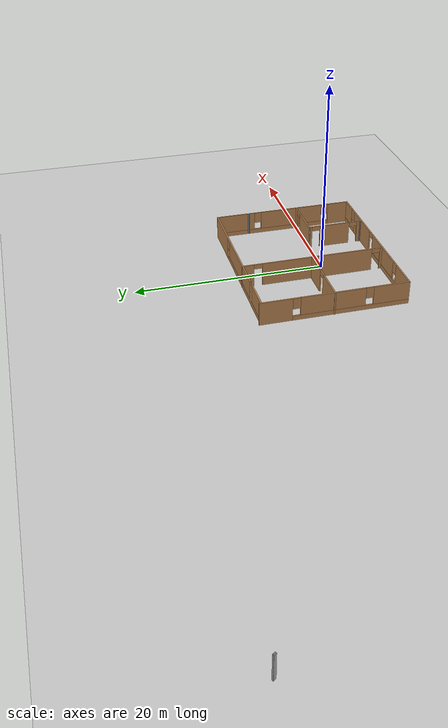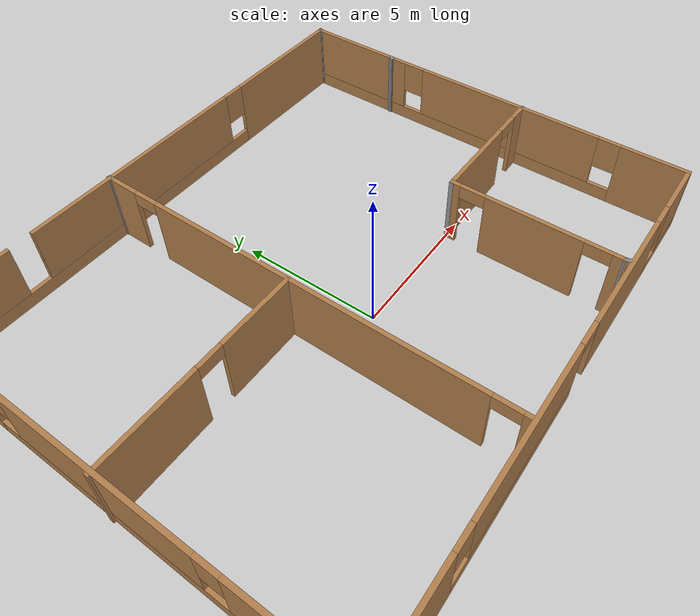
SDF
<sdf version="1.7">
 <world name="default">
  <light name="sun" type="directional">
   <pose>0 0 10 0 -0 0</pose>
   <diffuse>0.8 0.8 0.8 1</diffuse>
   <specular>0.2 0.2 0.2 1</specular>
   <attenuation>
    <range>1000</range>
    <constant>0.9</constant>
    <linear>0.01</linear>
    <quadratic>0.001</quadratic>
   </attenuation>
   <direction>-0.5 0.1 -0.9</direction>
   <spot><inner_angle>0</inner_angle><outer_angle>0</outer_angle><falloff>0</falloff></spot>
  </light>
  <model name="ground_plane">
   <static>1</static>
   <link name="link">
    <collision name="collision">
     <geometry><plane><normal>0 0 1</normal><size>100 100</size></plane></geometry>
     <surface><friction><ode><mu>100</mu><mu2>50</mu2></ode></friction></surface>
    </collision>
    <visual name="visual">
     <cast_shadows>0</cast_shadows>
     <geometry><plane><normal>0 0 1</normal><size>100 100</size></plane></geometry>
     <material>
      <script><uri>file://media/materials/scripts/gazebo.material</uri><name>Gazebo/Grey</name></script>
     </material>
    </visual>
   </link>
  </model>
  <gravity>0 0 -9.8</gravity>
  <magnetic_field>6e-06 2.3e-05 -4.2e-05</magnetic_field>
  <atmosphere type="adiabatic"/>
  <physics type="ode">
   <max_step_size>0.001</max_step_size>
   <real_time_factor>1</real_time_factor>
   <real_time_update_rate>1000</real_time_update_rate>
  </physics>
  <scene><ambient>0.4 0.4 0.4 1</ambient><background>0.7 0.7 0.7 1</background><shadows>1</shadows></scene>
  <spherical_coordinates>
   <surface_model>EARTH_WGS84</surface_model>
   <latitude_deg>0</latitude_deg>
   <longitude_deg>0</longitude_deg>
   <elevation>0</elevation>
   <heading_deg>0</heading_deg>
  </spherical_coordinates>
  <model name="gded">
   <pose>-18.3364 6.25028 0 0 -0 0</pose>
   <link name="Wall_12">
    <collision name="Wall_12_Collision">
     <geometry><box><size>0.25 0.15 2.5</size></box></geometry>
     <pose>0 0 1.25 0 -0 0</pose>
    </collision>
    <visual name="Wall_12_Visual">
     <pose>0 0 1.25 0 -0 0</pose>
     <geometry><box><size>0.25 0.15 2.5</size></box></geometry>
     <material>
      <script><uri>file://media/materials/scripts/gazebo.material</uri><name>Gazebo/Grey</name></script>
      <ambient>1 1 1 1</ambient>
     </material>
     <meta><layer>0</layer></meta>
    </visual>
    <pose>-27.549 12.2668 0 0 -0 -1.0472</pose>
   </link>
   <link name="Wall_13">
    <collision name="Wall_13_Collision">
     <geometry><box><size>0.25 0.15 2.5</size></box></geometry>
     <pose>0 0 1.25 0 -0 0</pose>
    </collision>
    <visual name="Wall_13_Visual">
     <pose>0 0 1.25 0 -0 0</pose>
     <geometry><box><size>0.25 0.15 2.5</size></box></geometry>
     <material>
      <script><uri>file://media/materials/scripts/gazebo.material</uri><name>Gazebo/Grey</name></script>
      <ambient>1 1 1 1</ambient>
     </material>
     <meta><layer>0</layer></meta>
    </visual>
    <pose>-27.549 12.2668 0 0 -0 2.0944</pose>
   </link>
   <link name="Wall_22">
    <pose>9.4587 -4.66255 0 0 -0 -1.5708</pose>
    <visual name="Wall_22_Visual_0">
     <pose>-6.05793 0 1.25 0 -0 0</pose>
     <geometry><box><size>3.38415 0.15 2.5</size></box></geometry>
     <material>
      <script><uri>file://media/materials/scripts/gazebo.material</uri><name>Gazebo/Wood</name></script>
      <ambient>1 1 1 1</ambient>
     </material>
     <meta><layer>0</layer></meta>
    </visual>
    <collision name="Wall_22_Collision_0">
     <geometry><box><size>3.38415 0.15 2.5</size></box></geometry>
     <pose>-6.05793 0 1.25 0 -0 0</pose>
    </collision>
    <visual name="Wall_22_Visual_1">
     <pose>1.69207 0 0.25 0 -0 0</pose>
     <geometry><box><size>12.1159 0.15 0.5</size></box></geometry>
     <material>
      <script><uri>file://media/materials/scripts/gazebo.material</uri><name>Gazebo/Wood</name></script>
      <ambient>1 1 1 1</ambient>
     </material>
     <meta><layer>0</layer></meta>
    </visual>
    <collision name="Wall_22_Collision_1">
     <geometry><box><size>12.1159 0.15 0.5</size></box></geometry>
     <pose>1.69207 0 0.25 0 -0 0</pose>
    </collision>
    <visual name="Wall_22_Visual_2">
     <pose>-0.208847 0 1.5 0 -0 0</pose>
     <geometry><box><size>6.71401 0.15 2</size></box></geometry>
     <material>
      <script><uri>file://media/materials/scripts/gazebo.material</uri><name>Gazebo/Wood</name></script>
      <ambient>1 1 1 1</ambient>
     </material>
     <meta><layer>0</layer></meta>
    </visual>
    <collision name="Wall_22_Collision_2">
     <geometry><box><size>6.71401 0.15 2</size></box></geometry>
     <pose>-0.208847 0 1.5 0 -0 0</pose>
    </collision>
    <visual name="Wall_22_Visual_3">
     <pose>5.84908 0 1.5 0 -0 0</pose>
     <geometry><box><size>3.80184 0.15 2</size></box></geometry>
     <material>
      <script><uri>file://media/materials/scripts/gazebo.material</uri><name>Gazebo/Wood</name></script>
      <ambient>1 1 1 1</ambient>
     </material>
     <meta><layer>0</layer></meta>
    </visual>
    <collision name="Wall_22_Collision_3">
     <geometry><box><size>3.80184 0.15 2</size></box></geometry>
     <pose>5.84908 0 1.5 0 -0 0</pose>
    </collision>
    <visual name="Wall_22_Visual_4">
     <pose>-3.96585 0 1.9 0 -0 0</pose>
     <geometry><box><size>0.8 0.15 1.2</size></box></geometry>
     <material>
      <script><uri>file://media/materials/scripts/gazebo.material</uri><name>Gazebo/Wood</name></script>
      <ambient>1 1 1 1</ambient>
     </material>
     <meta><layer>0</layer></meta>
    </visual>
    <collision name="Wall_22_Collision_4">
     <geometry><box><size>0.8 0.15 1.2</size></box></geometry>
     <pose>-3.96585 0 1.9 0 -0 0</pose>
    </collision>
    <visual name="Wall_22_Visual_5">
     <pose>3.54816 0 1.9 0 -0 0</pose>
     <geometry><box><size>0.8 0.15 1.2</size></box></geometry>
     <material>
      <script><uri>file://media/materials/scripts/gazebo.material</uri><name>Gazebo/Wood</name></script>
      <ambient>1 1 1 1</ambient>
     </material>
     <meta><layer>0</layer></meta>
    </visual>
    <collision name="Wall_22_Collision_5">
     <geometry><box><size>0.8 0.15 1.2</size></box></geometry>
     <pose>3.54816 0 1.9 0 -0 0</pose>
    </collision>
   </link>
   <link name="Wall_23">
    <pose>18.5087 -12.3375 0 0 -0 0</pose>
    <visual name="Wall_23_Visual_0">
     <pose>-7.46882 0 1.25 0 -0 0</pose>
     <geometry><box><size>3.31236 0.15 2.5</size></box></geometry>
     <material>
      <script><uri>file://media/materials/scripts/gazebo.material</uri><name>Gazebo/Wood</name></script>
      <ambient>1 1 1 1</ambient>
     </material>
     <meta><layer>0</layer></meta>
    </visual>
    <collision name="Wall_23_Collision_0">
     <geometry><box><size>3.31236 0.15 2.5</size></box></geometry>
     <pose>-7.46882 0 1.25 0 -0 0</pose>
    </collision>
    <visual name="Wall_23_Visual_1">
     <pose>3.95701 0 1.25 0 -0 0</pose>
     <geometry><box><size>4.62997 0.15 2.5</size></box></geometry>
     <material>
      <script><uri>file://media/materials/scripts/gazebo.material</uri><name>Gazebo/Wood</name></script>
      <ambient>1 1 1 1</ambient>
     </material>
     <meta><layer>0</layer></meta>
    </visual>
    <collision name="Wall_23_Collision_1">
     <geometry><box><size>4.62997 0.15 2.5</size></box></geometry>
     <pose>3.95701 0 1.25 0 -0 0</pose>
    </collision>
    <visual name="Wall_23_Visual_2">
     <pose>-2.53531 0 0.25 0 -0 0</pose>
     <geometry><box><size>6.55467 0.15 0.5</size></box></geometry>
     <material>
      <script><uri>file://media/materials/scripts/gazebo.material</uri><name>Gazebo/Wood</name></script>
      <ambient>1 1 1 1</ambient>
     </material>
     <meta><layer>0</layer></meta>
    </visual>
    <collision name="Wall_23_Collision_2">
     <geometry><box><size>6.55467 0.15 0.5</size></box></geometry>
     <pose>-2.53531 0 0.25 0 -0 0</pose>
    </collision>
    <visual name="Wall_23_Visual_3">
     <pose>7.6985 0 0.25 0 -0 0</pose>
     <geometry><box><size>2.85301 0.15 0.5</size></box></geometry>
     <material>
      <script><uri>file://media/materials/scripts/gazebo.material</uri><name>Gazebo/Wood</name></script>
      <ambient>1 1 1 1</ambient>
     </material>
     <meta><layer>0</layer></meta>
    </visual>
    <collision name="Wall_23_Collision_3">
     <geometry><box><size>2.85301 0.15 0.5</size></box></geometry>
     <pose>7.6985 0 0.25 0 -0 0</pose>
    </collision>
    <visual name="Wall_23_Visual_4">
     <pose>-2.13531 0 1.5 0 -0 0</pose>
     <geometry><box><size>5.75467 0.15 2</size></box></geometry>
     <material>
      <script><uri>file://media/materials/scripts/gazebo.material</uri><name>Gazebo/Wood</name></script>
      <ambient>1 1 1 1</ambient>
     </material>
     <meta><layer>0</layer></meta>
    </visual>
    <collision name="Wall_23_Collision_4">
     <geometry><box><size>5.75467 0.15 2</size></box></geometry>
     <pose>-2.13531 0 1.5 0 -0 0</pose>
    </collision>
    <visual name="Wall_23_Visual_5">
     <pose>-2.13531 0 1.5 0 -0 0</pose>
     <geometry><box><size>5.75467 0.15 2</size></box></geometry>
     <material>
      <script><uri>file://media/materials/scripts/gazebo.material</uri><name>Gazebo/Wood</name></script>
      <ambient>1 1 1 1</ambient>
     </material>
     <meta><layer>0</layer></meta>
    </visual>
    <collision name="Wall_23_Collision_5">
     <geometry><box><size>5.75467 0.15 2</size></box></geometry>
     <pose>-2.13531 0 1.5 0 -0 0</pose>
    </collision>
    <visual name="Wall_23_Visual_6">
     <pose>8.0985 0 1.5 0 -0 0</pose>
     <geometry><box><size>2.05301 0.15 2</size></box></geometry>
     <material>
      <script><uri>file://media/materials/scripts/gazebo.material</uri><name>Gazebo/Wood</name></script>
      <ambient>1 1 1 1</ambient>
     </material>
     <meta><layer>0</layer></meta>
    </visual>
    <collision name="Wall_23_Collision_6">
     <geometry><box><size>2.05301 0.15 2</size></box></geometry>
     <pose>8.0985 0 1.5 0 -0 0</pose>
    </collision>
    <visual name="Wall_23_Visual_7">
     <pose>-5.41264 0 1.9 0 -0 0</pose>
     <geometry><box><size>0.8 0.15 1.2</size></box></geometry>
     <material>
      <script><uri>file://media/materials/scripts/gazebo.material</uri><name>Gazebo/Wood</name></script>
      <ambient>1 1 1 1</ambient>
     </material>
     <meta><layer>0</layer></meta>
    </visual>
    <collision name="Wall_23_Collision_7">
     <geometry><box><size>0.8 0.15 1.2</size></box></geometry>
     <pose>-5.41264 0 1.9 0 -0 0</pose>
    </collision>
    <visual name="Wall_23_Visual_8">
     <pose>6.67199 0 1.9 0 -0 0</pose>
     <geometry><box><size>0.8 0.15 1.2</size></box></geometry>
     <material>
      <script><uri>file://media/materials/scripts/gazebo.material</uri><name>Gazebo/Wood</name></script>
      <ambient>1 1 1 1</ambient>
     </material>
     <meta><layer>0</layer></meta>
    </visual>
    <collision name="Wall_23_Collision_8">
     <geometry><box><size>0.8 0.15 1.2</size></box></geometry>
     <pose>6.67199 0 1.9 0 -0 0</pose>
    </collision>
    <visual name="Wall_23_Visual_9">
     <pose>1.19203 0 2.25 0 -0 0</pose>
     <geometry><box><size>0.9 0.15 0.5</size></box></geometry>
     <material>
      <script><uri>file://media/materials/scripts/gazebo.material</uri><name>Gazebo/Wood</name></script>
      <ambient>1 1 1 1</ambient>
     </material>
     <meta><layer>0</layer></meta>
    </visual>
    <collision name="Wall_23_Collision_9">
     <geometry><box><size>0.9 0.15 0.5</size></box></geometry>
     <pose>1.19203 0 2.25 0 -0 0</pose>
    </collision>
    <visual name="Wall_23_Visual_10">
     <pose>1.19203 0 2.25 0 -0 0</pose>
     <geometry><box><size>0.9 0.15 0.5</size></box></geometry>
     <material>
      <script><uri>file://media/materials/scripts/gazebo.material</uri><name>Gazebo/Wood</name></script>
      <ambient>1 1 1 1</ambient>
     </material>
     <meta><layer>0</layer></meta>
    </visual>
    <collision name="Wall_23_Collision_10">
     <geometry><box><size>0.9 0.15 0.5</size></box></geometry>
     <pose>1.19203 0 2.25 0 -0 0</pose>
    </collision>
   </link>
   <link name="Wall_24">
    <pose>27.5587 -4.78755 0 0 -0 1.5708</pose>
    <visual name="Wall_24_Visual_0">
     <pose>-6.43001 0 1.25 0 -0 0</pose>
     <geometry><box><size>2.38997 0.15 2.5</size></box></geometry>
     <material>
      <script><uri>file://media/materials/scripts/gazebo.material</uri><name>Gazebo/Wood</name></script>
      <ambient>1 1 1 1</ambient>
     </material>
     <meta><layer>0</layer></meta>
    </visual>
    <collision name="Wall_24_Collision_0">
     <geometry><box><size>2.38997 0.15 2.5</size></box></geometry>
     <pose>-6.43001 0 1.25 0 -0 0</pose>
    </collision>
    <visual name="Wall_24_Visual_1">
     <pose>1.19499 0 0.25 0 -0 0</pose>
     <geometry><box><size>12.86 0.15 0.5</size></box></geometry>
     <material>
      <script><uri>file://media/materials/scripts/gazebo.material</uri><name>Gazebo/Wood</name></script>
      <ambient>1 1 1 1</ambient>
     </material>
     <meta><layer>0</layer></meta>
    </visual>
    <collision name="Wall_24_Collision_1">
     <geometry><box><size>12.86 0.15 0.5</size></box></geometry>
     <pose>1.19499 0 0.25 0 -0 0</pose>
    </collision>
    <visual name="Wall_24_Visual_2">
     <pose>-0.886582 0 1.5 0 -0 0</pose>
     <geometry><box><size>7.09689 0.15 2</size></box></geometry>
     <material>
      <script><uri>file://media/materials/scripts/gazebo.material</uri><name>Gazebo/Wood</name></script>
      <ambient>1 1 1 1</ambient>
     </material>
     <meta><layer>0</layer></meta>
    </visual>
    <collision name="Wall_24_Collision_2">
     <geometry><box><size>7.09689 0.15 2</size></box></geometry>
     <pose>-0.886582 0 1.5 0 -0 0</pose>
    </collision>
    <visual name="Wall_24_Visual_3">
     <pose>5.54343 0 1.5 0 -0 0</pose>
     <geometry><box><size>4.16313 0.15 2</size></box></geometry>
     <material>
      <script><uri>file://media/materials/scripts/gazebo.material</uri><name>Gazebo/Wood</name></script>
      <ambient>1 1 1 1</ambient>
     </material>
     <meta><layer>0</layer></meta>
    </visual>
    <collision name="Wall_24_Collision_3">
     <geometry><box><size>4.16313 0.15 2</size></box></geometry>
     <pose>5.54343 0 1.5 0 -0 0</pose>
    </collision>
    <visual name="Wall_24_Visual_4">
     <pose>-4.83503 0 1.9 0 -0 0</pose>
     <geometry><box><size>0.8 0.15 1.2</size></box></geometry>
     <material>
      <script><uri>file://media/materials/scripts/gazebo.material</uri><name>Gazebo/Wood</name></script>
      <ambient>1 1 1 1</ambient>
     </material>
     <meta><layer>0</layer></meta>
    </visual>
    <collision name="Wall_24_Collision_4">
     <geometry><box><size>0.8 0.15 1.2</size></box></geometry>
     <pose>-4.83503 0 1.9 0 -0 0</pose>
    </collision>
    <visual name="Wall_24_Visual_5">
     <pose>3.06187 0 1.9 0 -0 0</pose>
     <geometry><box><size>0.8 0.15 1.2</size></box></geometry>
     <material>
      <script><uri>file://media/materials/scripts/gazebo.material</uri><name>Gazebo/Wood</name></script>
      <ambient>1 1 1 1</ambient>
     </material>
     <meta><layer>0</layer></meta>
    </visual>
    <collision name="Wall_24_Collision_5">
     <geometry><box><size>0.8 0.15 1.2</size></box></geometry>
     <pose>3.06187 0 1.9 0 -0 0</pose>
    </collision>
   </link>
   <link name="Wall_25">
    <collision name="Wall_25_Collision">
     <geometry><box><size>0.25 0.15 2.5</size></box></geometry>
     <pose>0 0 1.25 0 -0 0</pose>
    </collision>
    <visual name="Wall_25_Visual">
     <pose>0 0 1.25 0 -0 0</pose>
     <geometry><box><size>0.25 0.15 2.5</size></box></geometry>
     <material>
      <script><uri>file://media/materials/scripts/gazebo.material</uri><name>Gazebo/Grey</name></script>
      <ambient>1 1 1 1</ambient>
     </material>
     <meta><layer>0</layer></meta>
    </visual>
    <pose>27.5716 2.81075 0 0 -0 1.309</pose>
   </link>
   <link name="Wall_26">
    <pose>18.5346 2.85905 0 0 -0 3.14159</pose>
    <visual name="Wall_26_Visual_0">
     <pose>-6.64976 0 1.25 0 -0 0</pose>
     <geometry><box><size>4.95048 0.15 2.5</size></box></geometry>
     <material>
      <script><uri>file://media/materials/scripts/gazebo.material</uri><name>Gazebo/Wood</name></script>
      <ambient>1 1 1 1</ambient>
     </material>
     <meta><layer>0</layer></meta>
    </visual>
    <collision name="Wall_26_Collision_0">
     <geometry><box><size>4.95048 0.15 2.5</size></box></geometry>
     <pose>-6.64976 0 1.25 0 -0 0</pose>
    </collision>
    <visual name="Wall_26_Visual_1">
     <pose>2.47524 0 0.25 0 -0 0</pose>
     <geometry><box><size>13.2995 0.15 0.5</size></box></geometry>
     <material>
      <script><uri>file://media/materials/scripts/gazebo.material</uri><name>Gazebo/Wood</name></script>
      <ambient>1 1 1 1</ambient>
     </material>
     <meta><layer>0</layer></meta>
    </visual>
    <collision name="Wall_26_Collision_1">
     <geometry><box><size>13.2995 0.15 0.5</size></box></geometry>
     <pose>2.47524 0 0.25 0 -0 0</pose>
    </collision>
    <visual name="Wall_26_Visual_2">
     <pose>0.84397 0 1.5 0 -0 0</pose>
     <geometry><box><size>8.43697 0.15 2</size></box></geometry>
     <material>
      <script><uri>file://media/materials/scripts/gazebo.material</uri><name>Gazebo/Wood</name></script>
      <ambient>1 1 1 1</ambient>
     </material>
     <meta><layer>0</layer></meta>
    </visual>
    <collision name="Wall_26_Collision_2">
     <geometry><box><size>8.43697 0.15 2</size></box></geometry>
     <pose>0.84397 0 1.5 0 -0 0</pose>
    </collision>
    <visual name="Wall_26_Visual_3">
     <pose>7.49373 0 1.5 0 -0 0</pose>
     <geometry><box><size>3.26254 0.15 2</size></box></geometry>
     <material>
      <script><uri>file://media/materials/scripts/gazebo.material</uri><name>Gazebo/Wood</name></script>
      <ambient>1 1 1 1</ambient>
     </material>
     <meta><layer>0</layer></meta>
    </visual>
    <collision name="Wall_26_Collision_3">
     <geometry><box><size>3.26254 0.15 2</size></box></geometry>
     <pose>7.49373 0 1.5 0 -0 0</pose>
    </collision>
    <visual name="Wall_26_Visual_4">
     <pose>-3.77452 0 1.9 0 -0 0</pose>
     <geometry><box><size>0.8 0.15 1.2</size></box></geometry>
     <material>
      <script><uri>file://media/materials/scripts/gazebo.material</uri><name>Gazebo/Wood</name></script>
      <ambient>1 1 1 1</ambient>
     </material>
     <meta><layer>0</layer></meta>
    </visual>
    <collision name="Wall_26_Collision_4">
     <geometry><box><size>0.8 0.15 1.2</size></box></geometry>
     <pose>-3.77452 0 1.9 0 -0 0</pose>
    </collision>
    <visual name="Wall_26_Visual_5">
     <pose>5.06246 0 1.9 0 -0 0</pose>
     <geometry><box><size>0 0.15 1.2</size></box></geometry>
     <material>
      <script><uri>file://media/materials/scripts/gazebo.material</uri><name>Gazebo/Wood</name></script>
      <ambient>1 1 1 1</ambient>
     </material>
     <meta><layer>0</layer></meta>
    </visual>
    <collision name="Wall_26_Collision_5">
     <geometry><box><size>0 0.15 1.2</size></box></geometry>
     <pose>5.06246 0 1.9 0 -0 0</pose>
    </collision>
   </link>
   <link name="Wall_28">
    <collision name="Wall_28_Collision">
     <geometry><box><size>0.16 0.15 2.5</size></box></geometry>
     <pose>0 0 1.25 0 -0 0</pose>
    </collision>
    <visual name="Wall_28_Visual">
     <pose>0 0 1.25 0 -0 0</pose>
     <geometry><box><size>0.16 0.15 2.5</size></box></geometry>
     <material>
      <script><uri>file://media/materials/scripts/gazebo.material</uri><name>Gazebo/Grey</name></script>
      <ambient>1 1 1 1</ambient>
     </material>
     <meta><layer>0</layer></meta>
    </visual>
    <pose>27.5787 -6.27238 0 0 -0 0</pose>
   </link>
   <link name="Wall_29">
    <pose>25.1587 -6.27238 0 0 -0 3.14159</pose>
    <visual name="Wall_29_Visual_0">
     <pose>-2.10818 0 1.25 0 -0 0</pose>
     <geometry><box><size>0.783639 0.15 2.5</size></box></geometry>
     <material>
      <script><uri>file://media/materials/scripts/gazebo.material</uri><name>Gazebo/Wood</name></script>
      <ambient>1 1 1 1</ambient>
     </material>
     <meta><layer>0</layer></meta>
    </visual>
    <collision name="Wall_29_Collision_0">
     <geometry><box><size>0.783639 0.15 2.5</size></box></geometry>
     <pose>-2.10818 0 1.25 0 -0 0</pose>
    </collision>
    <visual name="Wall_29_Visual_1">
     <pose>0.841819 0 1.25 0 -0 0</pose>
     <geometry><box><size>3.31636 0.15 2.5</size></box></geometry>
     <material>
      <script><uri>file://media/materials/scripts/gazebo.material</uri><name>Gazebo/Wood</name></script>
      <ambient>1 1 1 1</ambient>
     </material>
     <meta><layer>0</layer></meta>
    </visual>
    <collision name="Wall_29_Collision_1">
     <geometry><box><size>3.31636 0.15 2.5</size></box></geometry>
     <pose>0.841819 0 1.25 0 -0 0</pose>
    </collision>
    <visual name="Wall_29_Visual_2">
     <pose>-1.26636 0 2.25 0 -0 0</pose>
     <geometry><box><size>0.9 0.15 0.5</size></box></geometry>
     <material>
      <script><uri>file://media/materials/scripts/gazebo.material</uri><name>Gazebo/Wood</name></script>
      <ambient>1 1 1 1</ambient>
     </material>
     <meta><layer>0</layer></meta>
    </visual>
    <collision name="Wall_29_Collision_2">
     <geometry><box><size>0.9 0.15 0.5</size></box></geometry>
     <pose>-1.26636 0 2.25 0 -0 0</pose>
    </collision>
   </link>
   <link name="Wall_30">
    <collision name="Wall_30_Collision">
     <geometry><box><size>0.16 0.15 2.5</size></box></geometry>
     <pose>0 0 1.25 0 -0 0</pose>
    </collision>
    <visual name="Wall_30_Visual">
     <pose>0 0 1.25 0 -0 0</pose>
     <geometry><box><size>0.16 0.15 2.5</size></box></geometry>
     <material>
      <script><uri>file://media/materials/scripts/gazebo.material</uri><name>Gazebo/Grey</name></script>
      <ambient>1 1 1 1</ambient>
     </material>
     <meta><layer>0</layer></meta>
    </visual>
    <pose>22.7387 -6.27238 0 0 -0 0</pose>
   </link>
   <link name="Wall_31">
    <pose>22.7437 -9.19738 0 0 -0 -1.5708</pose>
    <visual name="Wall_31_Visual_0">
     <pose>-2.80462 0 1.25 0 -0 0</pose>
     <geometry><box><size>0.390759 0.15 2.5</size></box></geometry>
     <material>
      <script><uri>file://media/materials/scripts/gazebo.material</uri><name>Gazebo/Wood</name></script>
      <ambient>1 1 1 1</ambient>
     </material>
     <meta><layer>0</layer></meta>
    </visual>
    <collision name="Wall_31_Collision_0">
     <geometry><box><size>0.390759 0.15 2.5</size></box></geometry>
     <pose>-2.80462 0 1.25 0 -0 0</pose>
    </collision>
    <visual name="Wall_31_Visual_1">
     <pose>-0.029473 0 1.25 0 -0 0</pose>
     <geometry><box><size>3.35954 0.15 2.5</size></box></geometry>
     <material>
      <script><uri>file://media/materials/scripts/gazebo.material</uri><name>Gazebo/Wood</name></script>
      <ambient>1 1 1 1</ambient>
     </material>
     <meta><layer>0</layer></meta>
    </visual>
    <collision name="Wall_31_Collision_1">
     <geometry><box><size>3.35954 0.15 2.5</size></box></geometry>
     <pose>-0.029473 0 1.25 0 -0 0</pose>
    </collision>
    <visual name="Wall_31_Visual_2">
     <pose>2.77515 0 1.25 0 -0 0</pose>
     <geometry><box><size>0.449705 0.15 2.5</size></box></geometry>
     <material>
      <script><uri>file://media/materials/scripts/gazebo.material</uri><name>Gazebo/Wood</name></script>
      <ambient>1 1 1 1</ambient>
     </material>
     <meta><layer>0</layer></meta>
    </visual>
    <collision name="Wall_31_Collision_2">
     <geometry><box><size>0.449705 0.15 2.5</size></box></geometry>
     <pose>2.77515 0 1.25 0 -0 0</pose>
    </collision>
    <visual name="Wall_31_Visual_3">
     <pose>-2.15924 0 2.25 0 -0 0</pose>
     <geometry><box><size>0.9 0.15 0.5</size></box></geometry>
     <material>
      <script><uri>file://media/materials/scripts/gazebo.material</uri><name>Gazebo/Wood</name></script>
      <ambient>1 1 1 1</ambient>
     </material>
     <meta><layer>0</layer></meta>
    </visual>
    <collision name="Wall_31_Collision_3">
     <geometry><box><size>0.9 0.15 0.5</size></box></geometry>
     <pose>-2.15924 0 2.25 0 -0 0</pose>
    </collision>
    <visual name="Wall_31_Visual_4">
     <pose>2.1003 0 2.25 0 -0 0</pose>
     <geometry><box><size>0.9 0.15 0.5</size></box></geometry>
     <material>
      <script><uri>file://media/materials/scripts/gazebo.material</uri><name>Gazebo/Wood</name></script>
      <ambient>1 1 1 1</ambient>
     </material>
     <meta><layer>0</layer></meta>
    </visual>
    <collision name="Wall_31_Collision_4">
     <geometry><box><size>0.9 0.15 0.5</size></box></geometry>
     <pose>2.1003 0 2.25 0 -0 0</pose>
    </collision>
   </link>
   <link name="Wall_32">
    <collision name="Wall_32_Collision">
     <geometry><box><size>0.25 0.15 2.5</size></box></geometry>
     <pose>0 0 1.25 0 -0 0</pose>
    </collision>
    <visual name="Wall_32_Visual">
     <pose>0 0 1.25 0 -0 0</pose>
     <geometry><box><size>0.25 0.15 2.5</size></box></geometry>
     <material>
      <script><uri>file://media/materials/scripts/gazebo.material</uri><name>Gazebo/Grey</name></script>
      <ambient>1 1 1 1</ambient>
     </material>
     <meta><layer>0</layer></meta>
    </visual>
    <pose>22.7566 -12.1707 0 0 -0 -1.309</pose>
   </link>
   <link name="Wall_34">
    <pose>16.542 -4.65701 0 0 -0 1.5708</pose>
    <visual name="Wall_34_Visual_0">
     <pose>-7.50141 0 1.25 0 -0 0</pose>
     <geometry><box><size>0.247179 0.15 2.5</size></box></geometry>
     <material>
      <script><uri>file://media/materials/scripts/gazebo.material</uri><name>Gazebo/Wood</name></script>
      <ambient>1 1 1 1</ambient>
     </material>
     <meta><layer>0</layer></meta>
    </visual>
    <collision name="Wall_34_Collision_0">
     <geometry><box><size>0.247179 0.15 2.5</size></box></geometry>
     <pose>-7.50141 0 1.25 0 -0 0</pose>
    </collision>
    <visual name="Wall_34_Visual_1">
     <pose>-0.526552 0 1.25 0 -0 0</pose>
     <geometry><box><size>11.9025 0.15 2.5</size></box></geometry>
     <material>
      <script><uri>file://media/materials/scripts/gazebo.material</uri><name>Gazebo/Wood</name></script>
      <ambient>1 1 1 1</ambient>
     </material>
     <meta><layer>0</layer></meta>
    </visual>
    <collision name="Wall_34_Collision_1">
     <geometry><box><size>11.9025 0.15 2.5</size></box></geometry>
     <pose>-0.526552 0 1.25 0 -0 0</pose>
    </collision>
    <visual name="Wall_34_Visual_2">
     <pose>6.97486 0 1.25 0 -0 0</pose>
     <geometry><box><size>1.30028 0.15 2.5</size></box></geometry>
     <material>
      <script><uri>file://media/materials/scripts/gazebo.material</uri><name>Gazebo/Wood</name></script>
      <ambient>1 1 1 1</ambient>
     </material>
     <meta><layer>0</layer></meta>
    </visual>
    <collision name="Wall_34_Collision_2">
     <geometry><box><size>1.30028 0.15 2.5</size></box></geometry>
     <pose>6.97486 0 1.25 0 -0 0</pose>
    </collision>
    <visual name="Wall_34_Visual_3">
     <pose>-6.92782 0 2.25 0 -0 0</pose>
     <geometry><box><size>0.9 0.15 0.5</size></box></geometry>
     <material>
      <script><uri>file://media/materials/scripts/gazebo.material</uri><name>Gazebo/Wood</name></script>
      <ambient>1 1 1 1</ambient>
     </material>
     <meta><layer>0</layer></meta>
    </visual>
    <collision name="Wall_34_Collision_3">
     <geometry><box><size>0.9 0.15 0.5</size></box></geometry>
     <pose>-6.92782 0 2.25 0 -0 0</pose>
    </collision>
    <visual name="Wall_34_Visual_4">
     <pose>5.87472 0 2.25 0 -0 0</pose>
     <geometry><box><size>0.9 0.15 0.5</size></box></geometry>
     <material>
      <script><uri>file://media/materials/scripts/gazebo.material</uri><name>Gazebo/Wood</name></script>
      <ambient>1 1 1 1</ambient>
     </material>
     <meta><layer>0</layer></meta>
    </visual>
    <collision name="Wall_34_Collision_4">
     <geometry><box><size>0.9 0.15 0.5</size></box></geometry>
     <pose>5.87472 0 2.25 0 -0 0</pose>
    </collision>
   </link>
   <link name="Wall_35">
    <collision name="Wall_35_Collision">
     <geometry><box><size>0.25 0.15 2.5</size></box></geometry>
     <pose>0 0 1.25 0 -0 0</pose>
    </collision>
    <visual name="Wall_35_Visual">
     <pose>0 0 1.25 0 -0 0</pose>
     <geometry><box><size>0.25 0.15 2.5</size></box></geometry>
     <material>
      <script><uri>file://media/materials/scripts/gazebo.material</uri><name>Gazebo/Grey</name></script>
      <ambient>1 1 1 1</ambient>
     </material>
     <meta><layer>0</layer></meta>
    </visual>
    <pose>16.529 2.84469 0 0 -0 -1.8326</pose>
   </link>
   <link name="Wall_37">
    <pose>12.9441 -4.57335 0 0 -0 3.14159</pose>
    <visual name="Wall_37_Visual_0">
     <pose>-2.23312 0 1.25 0 -0 0</pose>
     <geometry><box><size>2.78376 0.15 2.5</size></box></geometry>
     <material>
      <script><uri>file://media/materials/scripts/gazebo.material</uri><name>Gazebo/Wood</name></script>
      <ambient>1 1 1 1</ambient>
     </material>
     <meta><layer>0</layer></meta>
    </visual>
    <collision name="Wall_37_Collision_0">
     <geometry><box><size>2.78376 0.15 2.5</size></box></geometry>
     <pose>-2.23312 0 1.25 0 -0 0</pose>
    </collision>
    <visual name="Wall_37_Visual_1">
     <pose>1.84188 0 1.25 0 -0 0</pose>
     <geometry><box><size>3.56624 0.15 2.5</size></box></geometry>
     <material>
      <script><uri>file://media/materials/scripts/gazebo.material</uri><name>Gazebo/Wood</name></script>
      <ambient>1 1 1 1</ambient>
     </material>
     <meta><layer>0</layer></meta>
    </visual>
    <collision name="Wall_37_Collision_1">
     <geometry><box><size>3.56624 0.15 2.5</size></box></geometry>
     <pose>1.84188 0 1.25 0 -0 0</pose>
    </collision>
    <visual name="Wall_37_Visual_2">
     <pose>-0.391243 0 2.25 0 -0 0</pose>
     <geometry><box><size>0.9 0.15 0.5</size></box></geometry>
     <material>
      <script><uri>file://media/materials/scripts/gazebo.material</uri><name>Gazebo/Wood</name></script>
      <ambient>1 1 1 1</ambient>
     </material>
     <meta><layer>0</layer></meta>
    </visual>
    <collision name="Wall_37_Collision_2">
     <geometry><box><size>0.9 0.15 0.5</size></box></geometry>
     <pose>-0.391243 0 2.25 0 -0 0</pose>
    </collision>
   </link>
   <link name="Wall_39">
    <collision name="Wall_39_Collision">
     <geometry><box><size>0.25 0.15 2.5</size></box></geometry>
     <pose>0 0 1.25 0 -0 0</pose>
    </collision>
    <visual name="Wall_39_Visual">
     <pose>0 0 1.25 0 -0 0</pose>
     <geometry><box><size>0.25 0.15 2.5</size></box></geometry>
     <material>
      <script><uri>file://media/materials/scripts/gazebo.material</uri><name>Gazebo/Grey</name></script>
      <ambient>1 1 1 1</ambient>
     </material>
     <meta><layer>0</layer></meta>
    </visual>
    <pose>27.5368 -0.64927 0 0 -0 -1.8326</pose>
   </link>
   <link name="Wall_40">
    <collision name="Wall_40_Collision">
     <geometry><box><size>0.16 0.15 2.5</size></box></geometry>
     <pose>0 0 1.25 0 -0 0</pose>
    </collision>
    <visual name="Wall_40_Visual">
     <pose>0 0 1.25 0 -0 0</pose>
     <geometry><box><size>0.16 0.15 2.5</size></box></geometry>
     <material>
      <script><uri>file://media/materials/scripts/gazebo.material</uri><name>Gazebo/Grey</name></script>
      <ambient>1 1 1 1</ambient>
     </material>
     <meta><layer>0</layer></meta>
    </visual>
    <pose>27.5289 -0.697566 0 0 -0 0</pose>
   </link>
   <static>1</static>
  </model>
 </world>
</sdf>
